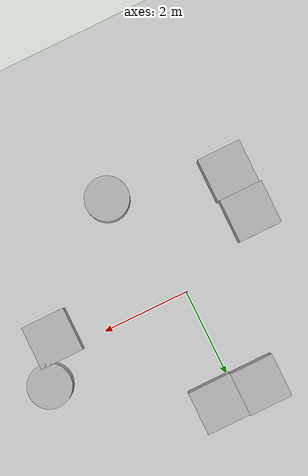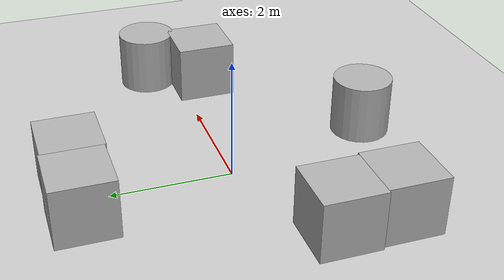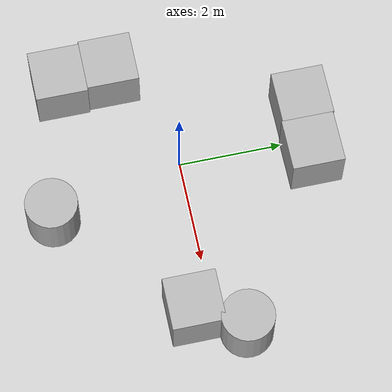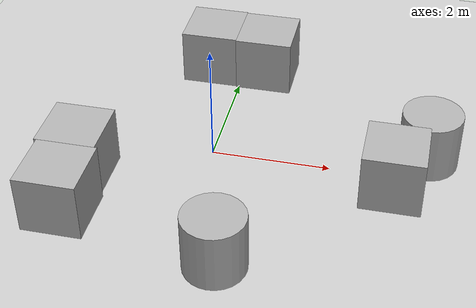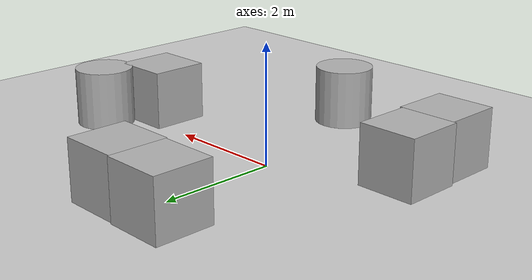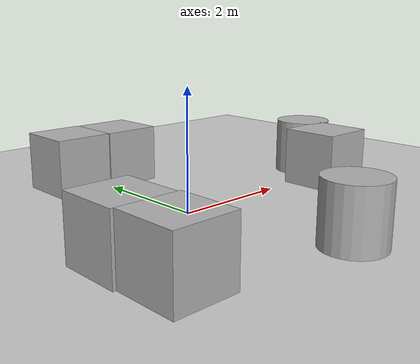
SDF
<sdf version='1.6'>
  <world name='empty'>
    <physics name='1ms' type='ignored'>
      <max_step_size>0.001</max_step_size>
      <real_time_factor>1</real_time_factor>
      <real_time_update_rate>1000</real_time_update_rate>
    </physics>
    <plugin name='gz::sim::systems::Physics' filename='gz-sim-physics-system'/>
    <plugin name='gz::sim::systems::UserCommands' filename='gz-sim-user-commands-system'/>
    <plugin name='gz::sim::systems::SceneBroadcaster' filename='gz-sim-scene-broadcaster-system'/>
    <plugin name='gz::sim::systems::Sensors' filename='gz-sim-sensors-system'>
      <render_engine>ogre2</render_engine>
    </plugin>
    <plugin name='gz::sim::systems::Contact' filename='gz-sim-contact-system'/>
    <gravity>0 0 -9.8</gravity>
    <magnetic_field>6e-06 2.3e-05 -4.2e-05</magnetic_field>
    <atmosphere type='adiabatic'/>
    <scene>
      <ambient>0.4 0.4 0.4 1</ambient>
      <background>0.7 0.7 0.7 1</background>
      <shadows>true</shadows>
    </scene>
    <model name='ground_plane'>
      <static>true</static>
      <link name='link'>
        <collision name='collision'>
          <geometry>
            <plane>
              <normal>0 0 1</normal>
              <size>100 100</size>
            </plane>
          </geometry>
          <surface>
            <friction>
              <ode/>
            </friction>
            <bounce/>
            <contact/>
          </surface>
        </collision>
        <visual name='visual'>
          <geometry>
            <plane>
              <normal>0 0 1</normal>
              <size>100 100</size>
            </plane>
          </geometry>
          <material>
            <ambient>0.8 0.8 0.8 1</ambient>
            <diffuse>0.8 0.8 0.8 1</diffuse>
            <specular>0.8 0.8 0.8 1</specular>
          </material>
        </visual>
        <pose>0 0 0 0 -0 0</pose>
        <inertial>
          <pose>0 0 0 0 -0 0</pose>
          <mass>1</mass>
          <inertia>
            <ixx>1</ixx>
            <ixy>0</ixy>
            <ixz>0</ixz>
            <iyy>1</iyy>
            <iyz>0</iyz>
            <izz>1</izz>
          </inertia>
        </inertial>
        <enable_wind>false</enable_wind>
      </link>
      <pose>0 0 0 0 -0 0</pose>
      <self_collide>false</self_collide>
    </model>
    <model name='box'>
      <pose>-0.554797 2.50595 0.5 -0 -0 -1e-06</pose>
      <link name='box_link'>
        <inertial>
          <inertia>
            <ixx>0.16666</ixx>
            <ixy>0</ixy>
            <ixz>0</ixz>
            <iyy>0.16666</iyy>
            <iyz>0</iyz>
            <izz>0.16666</izz>
          </inertia>
          <mass>1</mass>
          <pose>0 0 0 0 -0 0</pose>
        </inertial>
        <collision name='box_collision'>
          <geometry>
            <box>
              <size>1 1 1</size>
            </box>
          </geometry>
          <surface>
            <friction>
              <ode/>
            </friction>
            <bounce/>
            <contact/>
          </surface>
        </collision>
        <visual name='box_visual'>
          <geometry>
            <box>
              <size>1 1 1</size>
            </box>
          </geometry>
          <material>
            <ambient>0.3 0.3 0.3 1</ambient>
            <diffuse>0.7 0.7 0.7 1</diffuse>
            <specular>1 1 1 1</specular>
          </material>
        </visual>
        <pose>0 0 0 0 -0 0</pose>
        <enable_wind>false</enable_wind>
      </link>
      <static>false</static>
      <self_collide>false</self_collide>
    </model>
    <model name='box_0'>
      <pose>0.445203 2.48285 0.5 0 0 -0</pose>
      <link name='box_link'>
        <inertial>
          <inertia>
            <ixx>0.16666</ixx>
            <ixy>0</ixy>
            <ixz>0</ixz>
            <iyy>0.16666</iyy>
            <iyz>0</iyz>
            <izz>0.16666</izz>
          </inertia>
          <mass>1</mass>
          <pose>0 0 0 0 -0 0</pose>
        </inertial>
        <collision name='box_collision'>
          <geometry>
            <box>
              <size>1 1 1</size>
            </box>
          </geometry>
          <surface>
            <friction>
              <ode/>
            </friction>
            <bounce/>
            <contact/>
          </surface>
        </collision>
        <visual name='box_visual'>
          <geometry>
            <box>
              <size>1 1 1</size>
            </box>
          </geometry>
          <material>
            <ambient>0.3 0.3 0.3 1</ambient>
            <diffuse>0.7 0.7 0.7 1</diffuse>
            <specular>1 1 1 1</specular>
          </material>
        </visual>
        <pose>0 0 0 0 -0 0</pose>
        <enable_wind>false</enable_wind>
      </link>
      <static>false</static>
      <self_collide>false</self_collide>
    </model>
    <model name='cylinder'>
      <pose>3.56693 0.528281 0.5 -0 0 2e-05</pose>
      <link name='cylinder_link'>
        <inertial>
          <inertia>
            <ixx>0.14580000000000001</ixx>
            <ixy>0</ixy>
            <ixz>0</ixz>
            <iyy>0.14580000000000001</iyy>
            <iyz>0</iyz>
            <izz>0.125</izz>
          </inertia>
          <mass>1</mass>
          <pose>0 0 0 0 -0 0</pose>
        </inertial>
        <collision name='cylinder_collision'>
          <geometry>
            <cylinder>
              <radius>0.5</radius>
              <length>1</length>
            </cylinder>
          </geometry>
          <surface>
            <friction>
              <ode/>
            </friction>
            <bounce/>
            <contact/>
          </surface>
        </collision>
        <visual name='cylinder_visual'>
          <geometry>
            <cylinder>
              <radius>0.5</radius>
              <length>1</length>
            </cylinder>
          </geometry>
          <material>
            <ambient>0.3 0.3 0.3 1</ambient>
            <diffuse>0.7 0.7 0.7 1</diffuse>
            <specular>1 1 1 1</specular>
          </material>
        </visual>
        <pose>0 0 0 0 -0 0</pose>
        <enable_wind>false</enable_wind>
      </link>
      <static>false</static>
      <self_collide>false</self_collide>
    </model>
    <model name='box_1'>
      <pose>3.06852 -0.370281 0.5 0 -0 -2.2e-05</pose>
      <link name='box_link'>
        <inertial>
          <inertia>
            <ixx>0.16666</ixx>
            <ixy>0</ixy>
            <ixz>0</ixz>
            <iyy>0.16666</iyy>
            <iyz>0</iyz>
            <izz>0.16666</izz>
          </inertia>
          <mass>1</mass>
          <pose>0 0 0 0 -0 0</pose>
        </inertial>
        <collision name='box_collision'>
          <geometry>
            <box>
              <size>1 1 1</size>
            </box>
          </geometry>
          <surface>
            <friction>
              <ode/>
            </friction>
            <bounce/>
            <contact/>
          </surface>
        </collision>
        <visual name='box_visual'>
          <geometry>
            <box>
              <size>1 1 1</size>
            </box>
          </geometry>
          <material>
            <ambient>0.3 0.3 0.3 1</ambient>
            <diffuse>0.7 0.7 0.7 1</diffuse>
            <specular>1 1 1 1</specular>
          </material>
        </visual>
        <pose>0 0 0 0 -0 0</pose>
        <enable_wind>false</enable_wind>
      </link>
      <static>false</static>
      <self_collide>false</self_collide>
    </model>
    <model name='cylinder_0'>
      <pose>0.67691 -2.57491 0.499999 0 0 0</pose>
      <link name='cylinder_link'>
        <inertial>
          <inertia>
            <ixx>0.14580000000000001</ixx>
            <ixy>0</ixy>
            <ixz>0</ixz>
            <iyy>0.14580000000000001</iyy>
            <iyz>0</iyz>
            <izz>0.125</izz>
          </inertia>
          <mass>1</mass>
          <pose>0 0 0 0 -0 0</pose>
        </inertial>
        <collision name='cylinder_collision'>
          <geometry>
            <cylinder>
              <radius>0.5</radius>
              <length>1</length>
            </cylinder>
          </geometry>
          <surface>
            <friction>
              <ode/>
            </friction>
            <bounce/>
            <contact/>
          </surface>
        </collision>
        <visual name='cylinder_visual'>
          <geometry>
            <cylinder>
              <radius>0.5</radius>
              <length>1</length>
            </cylinder>
          </geometry>
          <material>
            <ambient>0.3 0.3 0.3 1</ambient>
            <diffuse>0.7 0.7 0.7 1</diffuse>
            <specular>1 1 1 1</specular>
          </material>
        </visual>
        <pose>0 0 0 0 -0 0</pose>
        <enable_wind>false</enable_wind>
      </link>
      <static>false</static>
      <self_collide>false</self_collide>
    </model>
    <model name='box_2'>
      <pose>-1.94902 -1.96768 0.5 0 0 0</pose>
      <link name='box_link'>
        <inertial>
          <inertia>
            <ixx>0.16666</ixx>
            <ixy>0</ixy>
            <ixz>0</ixz>
            <iyy>0.16666</iyy>
            <iyz>0</iyz>
            <izz>0.16666</izz>
          </inertia>
          <mass>1</mass>
          <pose>0 0 0 0 -0 0</pose>
        </inertial>
        <collision name='box_collision'>
          <geometry>
            <box>
              <size>1 1 1</size>
            </box>
          </geometry>
          <surface>
            <friction>
              <ode/>
            </friction>
            <bounce/>
            <contact/>
          </surface>
        </collision>
        <visual name='box_visual'>
          <geometry>
            <box>
              <size>1 1 1</size>
            </box>
          </geometry>
          <material>
            <ambient>0.3 0.3 0.3 1</ambient>
            <diffuse>0.7 0.7 0.7 1</diffuse>
            <specular>1 1 1 1</specular>
          </material>
        </visual>
        <pose>0 0 0 0 -0 0</pose>
        <enable_wind>false</enable_wind>
      </link>
      <static>false</static>
      <self_collide>false</self_collide>
    </model>
    <model name='box_3'>
      <pose>-1.99655 -0.967683 0.5 -0 -0 0</pose>
      <link name='box_link'>
        <inertial>
          <inertia>
            <ixx>0.16666</ixx>
            <ixy>0</ixy>
            <ixz>0</ixz>
            <iyy>0.16666</iyy>
            <iyz>0</iyz>
            <izz>0.16666</izz>
          </inertia>
          <mass>1</mass>
          <pose>0 0 0 0 -0 0</pose>
        </inertial>
        <collision name='box_collision'>
          <geometry>
            <box>
              <size>1 1 1</size>
            </box>
          </geometry>
          <surface>
            <friction>
              <ode/>
            </friction>
            <bounce/>
            <contact/>
          </surface>
        </collision>
        <visual name='box_visual'>
          <geometry>
            <box>
              <size>1 1 1</size>
            </box>
          </geometry>
          <material>
            <ambient>0.3 0.3 0.3 1</ambient>
            <diffuse>0.7 0.7 0.7 1</diffuse>
            <specular>1 1 1 1</specular>
          </material>
        </visual>
        <pose>0 0 0 0 -0 0</pose>
        <enable_wind>false</enable_wind>
      </link>
      <static>false</static>
      <self_collide>false</self_collide>
    </model>
    <light name='sun' type='directional'>
      <pose>0 0 10 0 -0 0</pose>
      <cast_shadows>true</cast_shadows>
      <intensity>1</intensity>
      <direction>-0.5 0.1 -0.9</direction>
      <diffuse>0.8 0.8 0.8 1</diffuse>
      <specular>0.2 0.2 0.2 1</specular>
      <attenuation>
        <range>1000</range>
        <linear>0.01</linear>
        <constant>0.90000000000000002</constant>
        <quadratic>0.001</quadratic>
      </attenuation>
      <spot>
        <inner_angle>0</inner_angle>
        <outer_angle>0</outer_angle>
        <falloff>0</falloff>
      </spot>
    </light>
  </world>
</sdf>
